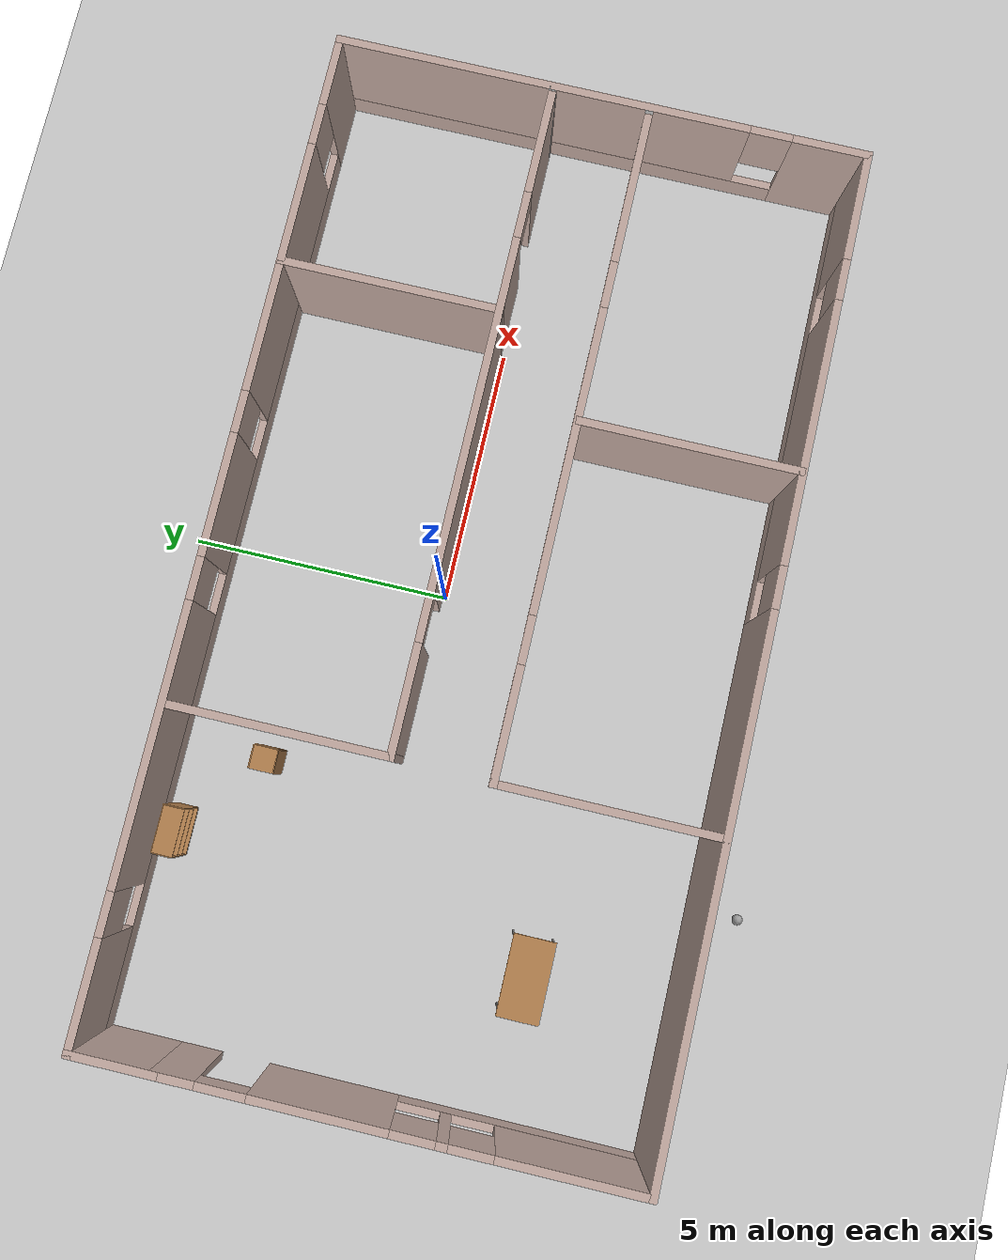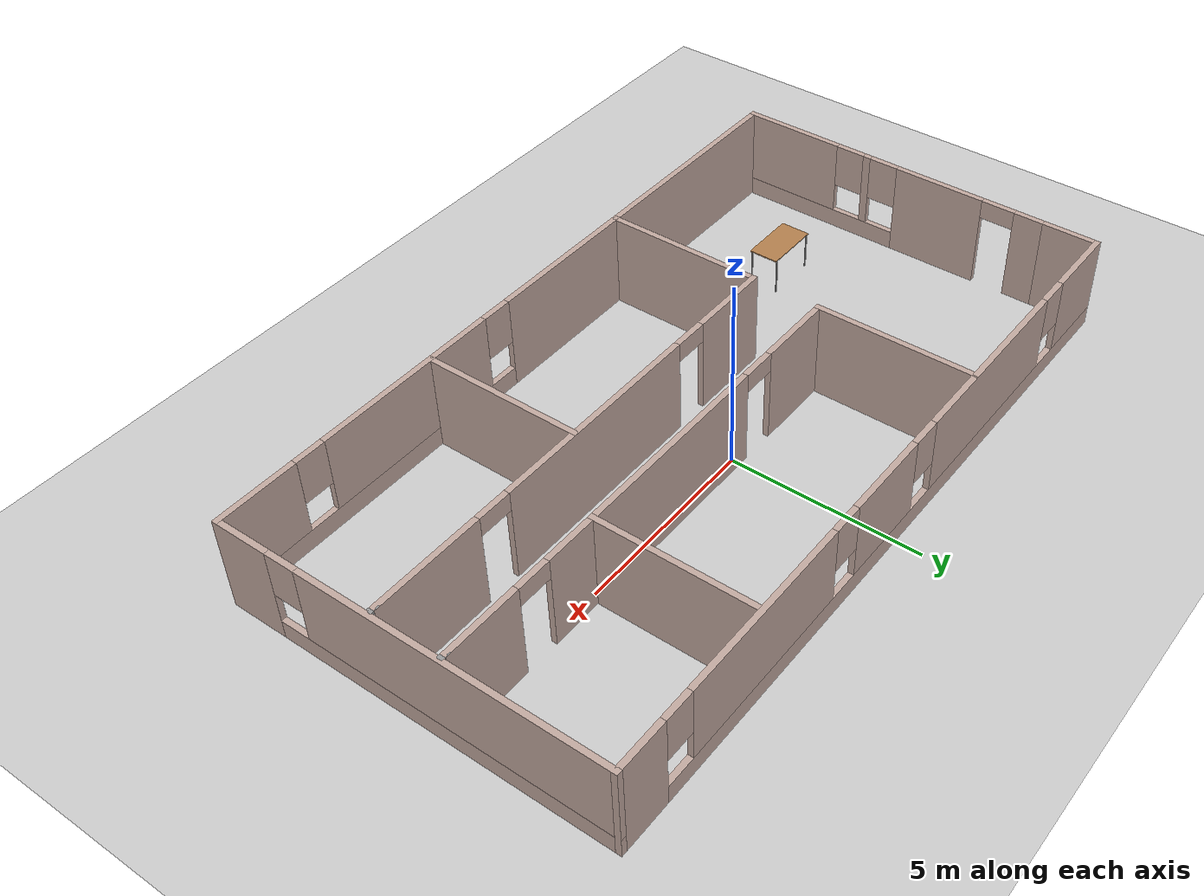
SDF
<sdf version="1.7">
 <world name="default">
  <plugin name="hello" filename="libhello.so"/>
  <light name="sun" type="directional">
   <pose>0 0 10 0 -0 0</pose>
   <diffuse>0.8 0.8 0.8 1</diffuse>
   <specular>0.2 0.2 0.2 1</specular>
   <attenuation>
    <range>1000</range>
    <constant>0.9</constant>
    <linear>0.01</linear>
    <quadratic>0.001</quadratic>
   </attenuation>
   <direction>-0.5 0.1 -0.9</direction>
   <spot><inner_angle>0</inner_angle><outer_angle>0</outer_angle><falloff>0</falloff></spot>
  </light>
  <model name="ground_plane">
   <static>1</static>
   <link name="link">
    <collision name="collision">
     <geometry><plane><normal>0 0 1</normal><size>100 100</size></plane></geometry>
     <surface><friction><ode><mu>100</mu><mu2>50</mu2></ode></friction></surface>
    </collision>
    <visual name="visual">
     <cast_shadows>0</cast_shadows>
     <geometry><plane><normal>0 0 1</normal><size>100 100</size></plane></geometry>
     <material>
      <script><uri>file://media/materials/scripts/gazebo.material</uri><name>Gazebo/Grey</name></script>
     </material>
    </visual>
   </link>
  </model>
  <gravity>0 0 -9.8</gravity>
  <magnetic_field>6e-06 2.3e-05 -4.2e-05</magnetic_field>
  <atmosphere type="adiabatic"/>
  <physics name="default_physics" default="0" type="ode">
   <max_step_size>0.001</max_step_size>
   <real_time_factor>1</real_time_factor>
   <real_time_update_rate>1000</real_time_update_rate>
  </physics>
  <scene><ambient>0.4 0.4 0.4 1</ambient><background>0.7 0.7 0.7 1</background><shadows>1</shadows></scene>
  <spherical_coordinates>
   <surface_model>EARTH_WGS84</surface_model>
   <latitude_deg>0</latitude_deg>
   <longitude_deg>0</longitude_deg>
   <elevation>0</elevation>
   <heading_deg>0</heading_deg>
  </spherical_coordinates>
  <model name="House_1level">
   <pose>0.13088 -0.79076 0 0 -0 0</pose>
   <link name="Wall_0">
    <pose>-9.425 -0.75 0 0 0 -1.5708</pose>
    <visual name="Wall_0_Visual_0">
     <pose>-3.98433 0 1.25 0 -0 0</pose>
     <geometry><box><size>0.781343 0.15 2.5</size></box></geometry>
     <material>
      <script><uri>file://media/materials/scripts/gazebo.material</uri><name>Gazebo/Grey</name></script>
      <ambient>0.760784 0.662745 0.627451 1</ambient>
     </material>
     <meta><layer>0</layer></meta>
    </visual>
    <collision name="Wall_0_Collision_0">
     <geometry><box><size>0.781343 0.15 2.5</size></box></geometry>
     <pose>-3.98433 0 1.25 0 -0 0</pose>
    </collision>
    <visual name="Wall_0_Visual_1">
     <pose>-1.4583 0 1.25 0 -0 0</pose>
     <geometry><box><size>2.47071 0.15 2.5</size></box></geometry>
     <material>
      <script><uri>file://media/materials/scripts/gazebo.material</uri><name>Gazebo/Grey</name></script>
      <ambient>0.760784 0.662745 0.627451 1</ambient>
     </material>
     <meta><layer>0</layer></meta>
    </visual>
    <collision name="Wall_0_Collision_1">
     <geometry><box><size>2.47071 0.15 2.5</size></box></geometry>
     <pose>-1.4583 0 1.25 0 -0 0</pose>
    </collision>
    <visual name="Wall_0_Visual_2">
     <pose>2.07602 0 0.25 0 -0 0</pose>
     <geometry><box><size>4.59795 0.15 0.5</size></box></geometry>
     <material>
      <script><uri>file://media/materials/scripts/gazebo.material</uri><name>Gazebo/Grey</name></script>
      <ambient>0.760784 0.662745 0.627451 1</ambient>
     </material>
     <meta><layer>0</layer></meta>
    </visual>
    <collision name="Wall_0_Collision_2">
     <geometry><box><size>4.59795 0.15 0.5</size></box></geometry>
     <pose>2.07602 0 0.25 0 -0 0</pose>
    </collision>
    <visual name="Wall_0_Visual_3">
     <pose>0.681787 0 1.5 0 -0 0</pose>
     <geometry><box><size>0.209478 0.15 2</size></box></geometry>
     <material>
      <script><uri>file://media/materials/scripts/gazebo.material</uri><name>Gazebo/Grey</name></script>
      <ambient>0.760784 0.662745 0.627451 1</ambient>
     </material>
     <meta><layer>0</layer></meta>
    </visual>
    <collision name="Wall_0_Collision_3">
     <geometry><box><size>0.209478 0.15 2</size></box></geometry>
     <pose>0.681787 0 1.5 0 -0 0</pose>
    </collision>
    <visual name="Wall_0_Visual_4">
     <pose>2.98076 0 1.5 0 -0 0</pose>
     <geometry><box><size>2.78847 0.15 2</size></box></geometry>
     <material>
      <script><uri>file://media/materials/scripts/gazebo.material</uri><name>Gazebo/Grey</name></script>
      <ambient>0.760784 0.662745 0.627451 1</ambient>
     </material>
     <meta><layer>0</layer></meta>
    </visual>
    <collision name="Wall_0_Collision_4">
     <geometry><box><size>2.78847 0.15 2</size></box></geometry>
     <pose>2.98076 0 1.5 0 -0 0</pose>
    </collision>
    <visual name="Wall_0_Visual_5">
     <pose>0.177048 0 1.9 0 -0 0</pose>
     <geometry><box><size>0.8 0.15 1.2</size></box></geometry>
     <material>
      <script><uri>file://media/materials/scripts/gazebo.material</uri><name>Gazebo/Grey</name></script>
      <ambient>0.760784 0.662745 0.627451 1</ambient>
     </material>
     <meta><layer>0</layer></meta>
    </visual>
    <collision name="Wall_0_Collision_5">
     <geometry><box><size>0.8 0.15 1.2</size></box></geometry>
     <pose>0.177048 0 1.9 0 -0 0</pose>
    </collision>
    <visual name="Wall_0_Visual_6">
     <pose>1.18653 0 1.9 0 -0 0</pose>
     <geometry><box><size>0.8 0.15 1.2</size></box></geometry>
     <material>
      <script><uri>file://media/materials/scripts/gazebo.material</uri><name>Gazebo/Grey</name></script>
      <ambient>0.760784 0.662745 0.627451 1</ambient>
     </material>
     <meta><layer>0</layer></meta>
    </visual>
    <collision name="Wall_0_Collision_6">
     <geometry><box><size>0.8 0.15 1.2</size></box></geometry>
     <pose>1.18653 0 1.9 0 -0 0</pose>
    </collision>
    <visual name="Wall_0_Visual_7">
     <pose>-3.14366 0 2.25 0 -0 0</pose>
     <geometry><box><size>0.9 0.15 0.5</size></box></geometry>
     <material>
      <script><uri>file://media/materials/scripts/gazebo.material</uri><name>Gazebo/Grey</name></script>
      <ambient>0.760784 0.662745 0.627451 1</ambient>
     </material>
     <meta><layer>0</layer></meta>
    </visual>
    <collision name="Wall_0_Collision_7">
     <geometry><box><size>0.9 0.15 0.5</size></box></geometry>
     <pose>-3.14366 0 2.25 0 -0 0</pose>
    </collision>
   </link>
   <link name="Wall_1">
    <pose>0 -5.05 0 0 -0 0</pose>
    <visual name="Wall_1_Visual_0">
     <pose>-4.39559 0 1.25 0 -0 0</pose>
     <geometry><box><size>10.2088 0.15 2.5</size></box></geometry>
     <material>
      <script><uri>file://media/materials/scripts/gazebo.material</uri><name>Gazebo/Grey</name></script>
      <ambient>0.760784 0.662745 0.627451 1</ambient>
     </material>
     <meta><layer>0</layer></meta>
    </visual>
    <collision name="Wall_1_Collision_0">
     <geometry><box><size>10.2088 0.15 2.5</size></box></geometry>
     <pose>-4.39559 0 1.25 0 -0 0</pose>
    </collision>
    <visual name="Wall_1_Visual_1">
     <pose>5.10441 0 0.25 0 -0 0</pose>
     <geometry><box><size>8.79118 0.15 0.5</size></box></geometry>
     <material>
      <script><uri>file://media/materials/scripts/gazebo.material</uri><name>Gazebo/Grey</name></script>
      <ambient>0.760784 0.662745 0.627451 1</ambient>
     </material>
     <meta><layer>0</layer></meta>
    </visual>
    <collision name="Wall_1_Collision_1">
     <geometry><box><size>8.79118 0.15 0.5</size></box></geometry>
     <pose>5.10441 0 0.25 0 -0 0</pose>
    </collision>
    <visual name="Wall_1_Visual_2">
     <pose>4.03018 0 1.5 0 -0 0</pose>
     <geometry><box><size>5.04273 0.15 2</size></box></geometry>
     <material>
      <script><uri>file://media/materials/scripts/gazebo.material</uri><name>Gazebo/Grey</name></script>
      <ambient>0.760784 0.662745 0.627451 1</ambient>
     </material>
     <meta><layer>0</layer></meta>
    </visual>
    <collision name="Wall_1_Collision_2">
     <geometry><box><size>5.04273 0.15 2</size></box></geometry>
     <pose>4.03018 0 1.5 0 -0 0</pose>
    </collision>
    <visual name="Wall_1_Visual_3">
     <pose>8.42577 0 1.5 0 -0 0</pose>
     <geometry><box><size>2.14845 0.15 2</size></box></geometry>
     <material>
      <script><uri>file://media/materials/scripts/gazebo.material</uri><name>Gazebo/Grey</name></script>
      <ambient>0.760784 0.662745 0.627451 1</ambient>
     </material>
     <meta><layer>0</layer></meta>
    </visual>
    <collision name="Wall_1_Collision_3">
     <geometry><box><size>2.14845 0.15 2</size></box></geometry>
     <pose>8.42577 0 1.5 0 -0 0</pose>
    </collision>
    <visual name="Wall_1_Visual_4">
     <pose>1.10882 0 1.9 0 -0 0</pose>
     <geometry><box><size>0.8 0.15 1.2</size></box></geometry>
     <material>
      <script><uri>file://media/materials/scripts/gazebo.material</uri><name>Gazebo/Grey</name></script>
      <ambient>0.760784 0.662745 0.627451 1</ambient>
     </material>
     <meta><layer>0</layer></meta>
    </visual>
    <collision name="Wall_1_Collision_4">
     <geometry><box><size>0.8 0.15 1.2</size></box></geometry>
     <pose>1.10882 0 1.9 0 -0 0</pose>
    </collision>
    <visual name="Wall_1_Visual_5">
     <pose>6.95155 0 1.9 0 -0 0</pose>
     <geometry><box><size>0.8 0.15 1.2</size></box></geometry>
     <material>
      <script><uri>file://media/materials/scripts/gazebo.material</uri><name>Gazebo/Grey</name></script>
      <ambient>0.760784 0.662745 0.627451 1</ambient>
     </material>
     <meta><layer>0</layer></meta>
    </visual>
    <collision name="Wall_1_Collision_5">
     <geometry><box><size>0.8 0.15 1.2</size></box></geometry>
     <pose>6.95155 0 1.9 0 -0 0</pose>
    </collision>
   </link>
   <link name="Wall_10">
    <collision name="Wall_10_Collision">
     <geometry><box><size>4.25 0.15 2.5</size></box></geometry>
     <pose>0 0 1.25 0 -0 0</pose>
    </collision>
    <visual name="Wall_10_Visual">
     <pose>0 0 1.25 0 -0 0</pose>
     <geometry><box><size>4.25 0.15 2.5</size></box></geometry>
     <material>
      <script><uri>file://media/materials/scripts/gazebo.material</uri><name>Gazebo/Grey</name></script>
      <ambient>0.760784 0.662745 0.627451 1</ambient>
     </material>
     <meta><layer>0</layer></meta>
    </visual>
    <pose>-3.39206 -2.96315 0 0 0 -1.5708</pose>
   </link>
   <link name="Wall_12">
    <pose>2.90794 -0.913146 0 0 -0 0</pose>
    <visual name="Wall_12_Visual_0">
     <pose>-5.27566 0 1.25 0 -0 0</pose>
     <geometry><box><size>2.19869 0.15 2.5</size></box></geometry>
     <material>
      <script><uri>file://media/materials/scripts/gazebo.material</uri><name>Gazebo/Grey</name></script>
      <ambient>0.760784 0.662745 0.627451 1</ambient>
     </material>
     <meta><layer>0</layer></meta>
    </visual>
    <collision name="Wall_12_Collision_0">
     <geometry><box><size>2.19869 0.15 2.5</size></box></geometry>
     <pose>-5.27566 0 1.25 0 -0 0</pose>
    </collision>
    <visual name="Wall_12_Visual_1">
     <pose>-0.37668 0 1.25 0 -0 0</pose>
     <geometry><box><size>5.79926 0.15 2.5</size></box></geometry>
     <material>
      <script><uri>file://media/materials/scripts/gazebo.material</uri><name>Gazebo/Grey</name></script>
      <ambient>0.760784 0.662745 0.627451 1</ambient>
     </material>
     <meta><layer>0</layer></meta>
    </visual>
    <collision name="Wall_12_Collision_1">
     <geometry><box><size>5.79926 0.15 2.5</size></box></geometry>
     <pose>-0.37668 0 1.25 0 -0 0</pose>
    </collision>
    <visual name="Wall_12_Visual_2">
     <pose>4.89898 0 1.25 0 -0 0</pose>
     <geometry><box><size>2.95205 0.15 2.5</size></box></geometry>
     <material>
      <script><uri>file://media/materials/scripts/gazebo.material</uri><name>Gazebo/Grey</name></script>
      <ambient>0.760784 0.662745 0.627451 1</ambient>
     </material>
     <meta><layer>0</layer></meta>
    </visual>
    <collision name="Wall_12_Collision_2">
     <geometry><box><size>2.95205 0.15 2.5</size></box></geometry>
     <pose>4.89898 0 1.25 0 -0 0</pose>
    </collision>
    <visual name="Wall_12_Visual_3">
     <pose>-3.72631 0 2.25 0 -0 0</pose>
     <geometry><box><size>0.9 0.15 0.5</size></box></geometry>
     <material>
      <script><uri>file://media/materials/scripts/gazebo.material</uri><name>Gazebo/Grey</name></script>
      <ambient>0.760784 0.662745 0.627451 1</ambient>
     </material>
     <meta><layer>0</layer></meta>
    </visual>
    <collision name="Wall_12_Collision_3">
     <geometry><box><size>0.9 0.15 0.5</size></box></geometry>
     <pose>-3.72631 0 2.25 0 -0 0</pose>
    </collision>
    <visual name="Wall_12_Visual_4">
     <pose>2.97295 0 2.25 0 -0 0</pose>
     <geometry><box><size>0.9 0.15 0.5</size></box></geometry>
     <material>
      <script><uri>file://media/materials/scripts/gazebo.material</uri><name>Gazebo/Grey</name></script>
      <ambient>0.760784 0.662745 0.627451 1</ambient>
     </material>
     <meta><layer>0</layer></meta>
    </visual>
    <collision name="Wall_12_Collision_4">
     <geometry><box><size>0.9 0.15 0.5</size></box></geometry>
     <pose>2.97295 0 2.25 0 -0 0</pose>
    </collision>
   </link>
   <link name="Wall_13">
    <collision name="Wall_13_Collision">
     <geometry><box><size>0.25 0.15 2.5</size></box></geometry>
     <pose>0 0 1.25 0 -0 0</pose>
    </collision>
    <visual name="Wall_13_Visual">
     <pose>0 0 1.25 0 -0 0</pose>
     <geometry><box><size>0.25 0.15 2.5</size></box></geometry>
     <material>
      <script><uri>file://media/materials/scripts/gazebo.material</uri><name>Gazebo/Grey</name></script>
      <ambient>1 1 1 1</ambient>
     </material>
     <meta><layer>0</layer></meta>
    </visual>
    <pose>9.25794 -0.913146 0 0 -0 0</pose>
   </link>
   <link name="Wall_16">
    <collision name="Wall_16_Collision">
     <geometry><box><size>4.25 0.15 2.5</size></box></geometry>
     <pose>0 0 1.25 0 -0 0</pose>
    </collision>
    <visual name="Wall_16_Visual">
     <pose>0 0 1.25 0 -0 0</pose>
     <geometry><box><size>4.25 0.15 2.5</size></box></geometry>
     <material>
      <script><uri>file://media/materials/scripts/gazebo.material</uri><name>Gazebo/Grey</name></script>
      <ambient>0.760784 0.662745 0.627451 1</ambient>
     </material>
     <meta><layer>0</layer></meta>
    </visual>
    <pose>4.9606 2.98206 0 0 0 -1.5708</pose>
   </link>
   <link name="Wall_18">
    <collision name="Wall_18_Collision">
     <geometry><box><size>4.25 0.15 2.5</size></box></geometry>
     <pose>0 0 1.25 0 -0 0</pose>
    </collision>
    <visual name="Wall_18_Visual">
     <pose>0 0 1.25 0 -0 0</pose>
     <geometry><box><size>4.25 0.15 2.5</size></box></geometry>
     <material>
      <script><uri>file://media/materials/scripts/gazebo.material</uri><name>Gazebo/Grey</name></script>
      <ambient>0.760784 0.662745 0.627451 1</ambient>
     </material>
     <meta><layer>0</layer></meta>
    </visual>
    <pose>3.25673 -2.96315 0 0 0 -1.5708</pose>
   </link>
   <link name="Wall_2">
    <pose>9.425 0 0 0 -0 1.5708</pose>
    <visual name="Wall_2_Visual_0">
     <pose>-4.37316 0 1.25 0 -0 0</pose>
     <geometry><box><size>1.50368 0.15 2.5</size></box></geometry>
     <material>
      <script><uri>file://media/materials/scripts/gazebo.material</uri><name>Gazebo/Grey</name></script>
      <ambient>0.760784 0.662745 0.627451 1</ambient>
     </material>
     <meta><layer>0</layer></meta>
    </visual>
    <collision name="Wall_2_Collision_0">
     <geometry><box><size>1.50368 0.15 2.5</size></box></geometry>
     <pose>-4.37316 0 1.25 0 -0 0</pose>
    </collision>
    <visual name="Wall_2_Visual_1">
     <pose>0.751842 0 0.25 0 -0 0</pose>
     <geometry><box><size>8.74631 0.15 0.5</size></box></geometry>
     <material>
      <script><uri>file://media/materials/scripts/gazebo.material</uri><name>Gazebo/Grey</name></script>
      <ambient>0.760784 0.662745 0.627451 1</ambient>
     </material>
     <meta><layer>0</layer></meta>
    </visual>
    <collision name="Wall_2_Collision_1">
     <geometry><box><size>8.74631 0.15 0.5</size></box></geometry>
     <pose>0.751842 0 0.25 0 -0 0</pose>
    </collision>
    <visual name="Wall_2_Visual_2">
     <pose>1.15184 0 1.5 0 -0 0</pose>
     <geometry><box><size>7.94632 0.15 2</size></box></geometry>
     <material>
      <script><uri>file://media/materials/scripts/gazebo.material</uri><name>Gazebo/Grey</name></script>
      <ambient>0.760784 0.662745 0.627451 1</ambient>
     </material>
     <meta><layer>0</layer></meta>
    </visual>
    <collision name="Wall_2_Collision_2">
     <geometry><box><size>7.94632 0.15 2</size></box></geometry>
     <pose>1.15184 0 1.5 0 -0 0</pose>
    </collision>
    <visual name="Wall_2_Visual_3">
     <pose>-3.22132 0 1.9 0 -0 0</pose>
     <geometry><box><size>0.8 0.15 1.2</size></box></geometry>
     <material>
      <script><uri>file://media/materials/scripts/gazebo.material</uri><name>Gazebo/Grey</name></script>
      <ambient>0.760784 0.662745 0.627451 1</ambient>
     </material>
     <meta><layer>0</layer></meta>
    </visual>
    <collision name="Wall_2_Collision_3">
     <geometry><box><size>0.8 0.15 1.2</size></box></geometry>
     <pose>-3.22132 0 1.9 0 -0 0</pose>
    </collision>
   </link>
   <link name="Wall_3">
    <pose>0 5.05 0 0 -0 3.14159</pose>
    <visual name="Wall_3_Visual_0">
     <pose>-8.79286 0 1.25 0 -0 0</pose>
     <geometry><box><size>1.41429 0.15 2.5</size></box></geometry>
     <material>
      <script><uri>file://media/materials/scripts/gazebo.material</uri><name>Gazebo/Grey</name></script>
      <ambient>0.760784 0.662745 0.627451 1</ambient>
     </material>
     <meta><layer>0</layer></meta>
    </visual>
    <collision name="Wall_3_Collision_0">
     <geometry><box><size>1.41429 0.15 2.5</size></box></geometry>
     <pose>-8.79286 0 1.25 0 -0 0</pose>
    </collision>
    <visual name="Wall_3_Visual_1">
     <pose>0.707143 0 0.25 0 -0 0</pose>
     <geometry><box><size>17.5857 0.15 0.5</size></box></geometry>
     <material>
      <script><uri>file://media/materials/scripts/gazebo.material</uri><name>Gazebo/Grey</name></script>
      <ambient>0.760784 0.662745 0.627451 1</ambient>
     </material>
     <meta><layer>0</layer></meta>
    </visual>
    <collision name="Wall_3_Collision_1">
     <geometry><box><size>17.5857 0.15 0.5</size></box></geometry>
     <pose>0.707143 0 0.25 0 -0 0</pose>
    </collision>
    <visual name="Wall_3_Visual_2">
     <pose>-4.85612 0 1.5 0 -0 0</pose>
     <geometry><box><size>4.85919 0.15 2</size></box></geometry>
     <material>
      <script><uri>file://media/materials/scripts/gazebo.material</uri><name>Gazebo/Grey</name></script>
      <ambient>0.760784 0.662745 0.627451 1</ambient>
     </material>
     <meta><layer>0</layer></meta>
    </visual>
    <collision name="Wall_3_Collision_2">
     <geometry><box><size>4.85919 0.15 2</size></box></geometry>
     <pose>-4.85612 0 1.5 0 -0 0</pose>
    </collision>
    <visual name="Wall_3_Visual_3">
     <pose>-0.466421 0 1.5 0 -0 0</pose>
     <geometry><box><size>2.3202 0.15 2</size></box></geometry>
     <material>
      <script><uri>file://media/materials/scripts/gazebo.material</uri><name>Gazebo/Grey</name></script>
      <ambient>0.760784 0.662745 0.627451 1</ambient>
     </material>
     <meta><layer>0</layer></meta>
    </visual>
    <collision name="Wall_3_Collision_3">
     <geometry><box><size>2.3202 0.15 2</size></box></geometry>
     <pose>-0.466421 0 1.5 0 -0 0</pose>
    </collision>
    <visual name="Wall_3_Visual_4">
     <pose>4.07623 0 1.5 0 -0 0</pose>
     <geometry><box><size>5.16509 0.15 2</size></box></geometry>
     <material>
      <script><uri>file://media/materials/scripts/gazebo.material</uri><name>Gazebo/Grey</name></script>
      <ambient>0.760784 0.662745 0.627451 1</ambient>
     </material>
     <meta><layer>0</layer></meta>
    </visual>
    <collision name="Wall_3_Collision_4">
     <geometry><box><size>5.16509 0.15 2</size></box></geometry>
     <pose>4.07623 0 1.5 0 -0 0</pose>
    </collision>
    <visual name="Wall_3_Visual_5">
     <pose>8.47939 0 1.5 0 -0 0</pose>
     <geometry><box><size>2.04122 0.15 2</size></box></geometry>
     <material>
      <script><uri>file://media/materials/scripts/gazebo.material</uri><name>Gazebo/Grey</name></script>
      <ambient>0.760784 0.662745 0.627451 1</ambient>
     </material>
     <meta><layer>0</layer></meta>
    </visual>
    <collision name="Wall_3_Collision_5">
     <geometry><box><size>2.04122 0.15 2</size></box></geometry>
     <pose>8.47939 0 1.5 0 -0 0</pose>
    </collision>
    <visual name="Wall_3_Visual_6">
     <pose>-7.68572 0 1.9 0 -0 0</pose>
     <geometry><box><size>0.8 0.15 1.2</size></box></geometry>
     <material>
      <script><uri>file://media/materials/scripts/gazebo.material</uri><name>Gazebo/Grey</name></script>
      <ambient>0.760784 0.662745 0.627451 1</ambient>
     </material>
     <meta><layer>0</layer></meta>
    </visual>
    <collision name="Wall_3_Collision_6">
     <geometry><box><size>0.8 0.15 1.2</size></box></geometry>
     <pose>-7.68572 0 1.9 0 -0 0</pose>
    </collision>
    <visual name="Wall_3_Visual_7">
     <pose>-2.02652 0 1.9 0 -0 0</pose>
     <geometry><box><size>0.8 0.15 1.2</size></box></geometry>
     <material>
      <script><uri>file://media/materials/scripts/gazebo.material</uri><name>Gazebo/Grey</name></script>
      <ambient>0.760784 0.662745 0.627451 1</ambient>
     </material>
     <meta><layer>0</layer></meta>
    </visual>
    <collision name="Wall_3_Collision_7">
     <geometry><box><size>0.8 0.15 1.2</size></box></geometry>
     <pose>-2.02652 0 1.9 0 -0 0</pose>
    </collision>
    <visual name="Wall_3_Visual_8">
     <pose>1.09368 0 1.9 0 -0 0</pose>
     <geometry><box><size>0.8 0.15 1.2</size></box></geometry>
     <material>
      <script><uri>file://media/materials/scripts/gazebo.material</uri><name>Gazebo/Grey</name></script>
      <ambient>0.760784 0.662745 0.627451 1</ambient>
     </material>
     <meta><layer>0</layer></meta>
    </visual>
    <collision name="Wall_3_Collision_8">
     <geometry><box><size>0.8 0.15 1.2</size></box></geometry>
     <pose>1.09368 0 1.9 0 -0 0</pose>
    </collision>
    <visual name="Wall_3_Visual_9">
     <pose>7.05877 0 1.9 0 -0 0</pose>
     <geometry><box><size>0.8 0.15 1.2</size></box></geometry>
     <material>
      <script><uri>file://media/materials/scripts/gazebo.material</uri><name>Gazebo/Grey</name></script>
      <ambient>0.760784 0.662745 0.627451 1</ambient>
     </material>
     <meta><layer>0</layer></meta>
    </visual>
    <collision name="Wall_3_Collision_9">
     <geometry><box><size>0.8 0.15 1.2</size></box></geometry>
     <pose>7.05877 0 1.9 0 -0 0</pose>
    </collision>
   </link>
   <link name="Wall_4">
    <collision name="Wall_4_Collision">
     <geometry><box><size>1.65 0.15 2.5</size></box></geometry>
     <pose>0 0 1.25 0 -0 0</pose>
    </collision>
    <visual name="Wall_4_Visual">
     <pose>0 0 1.25 0 -0 0</pose>
     <geometry><box><size>1.65 0.15 2.5</size></box></geometry>
     <material>
      <script><uri>file://media/materials/scripts/gazebo.material</uri><name>Gazebo/Grey</name></script>
      <ambient>0.760784 0.662745 0.627451 1</ambient>
     </material>
     <meta><layer>0</layer></meta>
    </visual>
    <pose>-9.425 4.3 0 0 0 -1.5708</pose>
   </link>
   <link name="Wall_6">
    <collision name="Wall_6_Collision">
     <geometry><box><size>4.25 0.15 2.5</size></box></geometry>
     <pose>0 0 1.25 0 -0 0</pose>
    </collision>
    <visual name="Wall_6_Visual">
     <pose>0 0 1.25 0 -0 0</pose>
     <geometry><box><size>4.25 0.15 2.5</size></box></geometry>
     <material>
      <script><uri>file://media/materials/scripts/gazebo.material</uri><name>Gazebo/Grey</name></script>
      <ambient>0.760784 0.662745 0.627451 1</ambient>
     </material>
     <meta><layer>0</layer></meta>
    </visual>
    <pose>-3.35688 2.98206 0 0 0 -1.5708</pose>
   </link>
   <link name="Wall_7">
    <pose>2.94312 0.932064 0 0 -0 0</pose>
    <visual name="Wall_7_Visual_0">
     <pose>-5.30854 0 1.25 0 -0 0</pose>
     <geometry><box><size>2.13292 0.15 2.5</size></box></geometry>
     <material>
      <script><uri>file://media/materials/scripts/gazebo.material</uri><name>Gazebo/Grey</name></script>
      <ambient>0.760784 0.662745 0.627451 1</ambient>
     </material>
     <meta><layer>0</layer></meta>
    </visual>
    <collision name="Wall_7_Collision_0">
     <geometry><box><size>2.13292 0.15 2.5</size></box></geometry>
     <pose>-5.30854 0 1.25 0 -0 0</pose>
    </collision>
    <visual name="Wall_7_Visual_1">
     <pose>0.046994 0 1.25 0 -0 0</pose>
     <geometry><box><size>6.77815 0.15 2.5</size></box></geometry>
     <material>
      <script><uri>file://media/materials/scripts/gazebo.material</uri><name>Gazebo/Grey</name></script>
      <ambient>0.760784 0.662745 0.627451 1</ambient>
     </material>
     <meta><layer>0</layer></meta>
    </visual>
    <collision name="Wall_7_Collision_1">
     <geometry><box><size>6.77815 0.15 2.5</size></box></geometry>
     <pose>0.046994 0 1.25 0 -0 0</pose>
    </collision>
    <visual name="Wall_7_Visual_2">
     <pose>5.35553 0 1.25 0 -0 0</pose>
     <geometry><box><size>2.03893 0.15 2.5</size></box></geometry>
     <material>
      <script><uri>file://media/materials/scripts/gazebo.material</uri><name>Gazebo/Grey</name></script>
      <ambient>0.760784 0.662745 0.627451 1</ambient>
     </material>
     <meta><layer>0</layer></meta>
    </visual>
    <collision name="Wall_7_Collision_2">
     <geometry><box><size>2.03893 0.15 2.5</size></box></geometry>
     <pose>5.35553 0 1.25 0 -0 0</pose>
    </collision>
    <visual name="Wall_7_Visual_3">
     <pose>-3.79208 0 2.25 0 -0 0</pose>
     <geometry><box><size>0.9 0.15 0.5</size></box></geometry>
     <material>
      <script><uri>file://media/materials/scripts/gazebo.material</uri><name>Gazebo/Grey</name></script>
      <ambient>0.760784 0.662745 0.627451 1</ambient>
     </material>
     <meta><layer>0</layer></meta>
    </visual>
    <collision name="Wall_7_Collision_3">
     <geometry><box><size>0.9 0.15 0.5</size></box></geometry>
     <pose>-3.79208 0 2.25 0 -0 0</pose>
    </collision>
    <visual name="Wall_7_Visual_4">
     <pose>3.88607 0 2.25 0 -0 0</pose>
     <geometry><box><size>0.9 0.15 0.5</size></box></geometry>
     <material>
      <script><uri>file://media/materials/scripts/gazebo.material</uri><name>Gazebo/Grey</name></script>
      <ambient>0.760784 0.662745 0.627451 1</ambient>
     </material>
     <meta><layer>0</layer></meta>
    </visual>
    <collision name="Wall_7_Collision_4">
     <geometry><box><size>0.9 0.15 0.5</size></box></geometry>
     <pose>3.88607 0 2.25 0 -0 0</pose>
    </collision>
   </link>
   <link name="Wall_8">
    <collision name="Wall_8_Collision">
     <geometry><box><size>0.25 0.15 2.5</size></box></geometry>
     <pose>0 0 1.25 0 -0 0</pose>
    </collision>
    <visual name="Wall_8_Visual">
     <pose>0 0 1.25 0 -0 0</pose>
     <geometry><box><size>0.25 0.15 2.5</size></box></geometry>
     <material>
      <script><uri>file://media/materials/scripts/gazebo.material</uri><name>Gazebo/Grey</name></script>
      <ambient>1 1 1 1</ambient>
     </material>
     <meta><layer>0</layer></meta>
    </visual>
    <pose>9.29312 0.932064 0 0 -0 0</pose>
   </link>
   <static>1</static>
  </model>
  <model name="bookshelf">
   <static>1</static>
   <link name="link">
    <inertial><mass>1</mass></inertial>
    <collision name="back">
     <pose>0 0.005 0.6 0 -0 0</pose>
     <geometry><box><size>0.9 0.01 1.2</size></box></geometry>
    </collision>
    <visual name="visual1">
     <pose>0 0.005 0.6 0 -0 0</pose>
     <geometry><box><size>0.9 0.01 1.2</size></box></geometry>
     <material>
      <script><uri>file://media/materials/scripts/gazebo.material</uri><name>Gazebo/Wood</name></script>
     </material>
    </visual>
    <collision name="left_side">
     <pose>0.45 -0.195 0.6 0 -0 0</pose>
     <geometry><box><size>0.02 0.4 1.2</size></box></geometry>
    </collision>
    <visual name="visual2">
     <pose>0.45 -0.195 0.6 0 -0 0</pose>
     <geometry><box><size>0.02 0.4 1.2</size></box></geometry>
     <material>
      <script><uri>file://media/materials/scripts/gazebo.material</uri><name>Gazebo/Wood</name></script>
     </material>
    </visual>
    <collision name="right_side">
     <pose>-0.45 -0.195 0.6 0 -0 0</pose>
     <geometry><box><size>0.02 0.4 1.2</size></box></geometry>
    </collision>
    <visual name="visual3">
     <pose>-0.45 -0.195 0.6 0 -0 0</pose>
     <geometry><box><size>0.02 0.4 1.2</size></box></geometry>
     <material>
      <script><uri>file://media/materials/scripts/gazebo.material</uri><name>Gazebo/Wood</name></script>
     </material>
    </visual>
    <collision name="bottom">
     <pose>0 -0.195 0.03 0 -0 0</pose>
     <geometry><box><size>0.88 0.4 0.06</size></box></geometry>
    </collision>
    <visual name="visual4">
     <pose>0 -0.195 0.03 0 -0 0</pose>
     <geometry><box><size>0.88 0.4 0.06</size></box></geometry>
     <material>
      <script><uri>file://media/materials/scripts/gazebo.material</uri><name>Gazebo/Wood</name></script>
     </material>
    </visual>
    <collision name="top">
     <pose>0 -0.195 1.19 0 -0 0</pose>
     <geometry><box><size>0.88 0.4 0.02</size></box></geometry>
    </collision>
    <visual name="visual5">
     <pose>0 -0.195 1.19 0 -0 0</pose>
     <geometry><box><size>0.88 0.4 0.02</size></box></geometry>
     <material>
      <script><uri>file://media/materials/scripts/gazebo.material</uri><name>Gazebo/Wood</name></script>
     </material>
    </visual>
    <collision name="low_shelf">
     <pose>0 -0.195 0.43 0 -0 0</pose>
     <geometry><box><size>0.88 0.4 0.02</size></box></geometry>
    </collision>
    <visual name="visual6">
     <pose>0 -0.195 0.43 0 -0 0</pose>
     <geometry><box><size>0.88 0.4 0.02</size></box></geometry>
     <material>
      <script><uri>file://media/materials/scripts/gazebo.material</uri><name>Gazebo/Wood</name></script>
     </material>
    </visual>
    <collision name="high_shelf">
     <pose>0 -0.195 0.8 0 -0 0</pose>
     <geometry><box><size>0.88 0.4 0.02</size></box></geometry>
    </collision>
    <visual name="visual7">
     <pose>0 -0.195 0.8 0 -0 0</pose>
     <geometry><box><size>0.88 0.4 0.02</size></box></geometry>
     <material>
      <script><uri>file://media/materials/scripts/gazebo.material</uri><name>Gazebo/Wood</name></script>
     </material>
    </visual>
   </link>
   <pose>-5.44204 4.05675 0 0 -0 0</pose>
  </model>
  <model name="cabinet">
   <static>1</static>
   <link name="cabinet_bottom_plate">
    <inertial>
     <pose>0 0 -1 0 -0 0</pose>
     <inertia><ixx>2.05</ixx><ixy>0</ixy><ixz>0</ixz><iyy>2.05</iyy><iyz>0</iyz><izz>2.05</izz></inertia>
     <mass>25</mass>
    </inertial>
    <collision name="cabinet_bottom_plate_geom">
     <pose>0 0 0.01 0 -0 0</pose>
     <geometry><box><size>0.45 0.45 0.02</size></box></geometry>
    </collision>
    <visual name="cabinet_bottom_plate_geom_visual">
     <pose>0 0 0.01 0 -0 0</pose>
     <geometry><box><size>0.45 0.45 0.02</size></box></geometry>
     <material>
      <script><uri>file://media/materials/scripts/gazebo.material</uri><name>Gazebo/Wood</name></script>
     </material>
    </visual>
    <collision name="cabinet_bottom_plate_geom_cabinet_back_plate">
     <pose>0.235 0 0.51 0 -0 0</pose>
     <geometry><box><size>0.02 0.45 1.02</size></box></geometry>
    </collision>
    <visual name="cabinet_bottom_plate_geom_cabinet_back_plate_visual">
     <pose>0.235 0 0.51 0 -0 0</pose>
     <geometry><box><size>0.02 0.45 1.02</size></box></geometry>
     <material>
      <script><uri>file://media/materials/scripts/gazebo.material</uri><name>Gazebo/Wood</name></script>
     </material>
    </visual>
    <collision name="cabinet_bottom_plate_geom_cabinet_left_plate">
     <pose>0 0.235 0.51 0 -0 0</pose>
     <geometry><box><size>0.45 0.02 1.02</size></box></geometry>
    </collision>
    <visual name="cabinet_bottom_plate_geom_cabinet_left_plate_visual">
     <pose>0 0.235 0.51 0 -0 0</pose>
     <geometry><box><size>0.45 0.02 1.02</size></box></geometry>
     <material>
      <script><uri>file://media/materials/scripts/gazebo.material</uri><name>Gazebo/Wood</name></script>
     </material>
    </visual>
    <collision name="cabinet_bottom_plate_geom_cabinet_middle_plate">
     <pose>0 0 0.51 0 -0 0</pose>
     <geometry><box><size>0.45 0.45 0.02</size></box></geometry>
    </collision>
    <visual name="cabinet_bottom_plate_geom_cabinet_middle_plate_visual">
     <pose>0 0 0.51 0 -0 0</pose>
     <geometry><box><size>0.45 0.45 0.02</size></box></geometry>
     <material>
      <script><uri>file://media/materials/scripts/gazebo.material</uri><name>Gazebo/Wood</name></script>
     </material>
    </visual>
    <collision name="cabinet_bottom_plate_geom_cabinet_right_plate">
     <pose>0 -0.235 0.51 0 -0 0</pose>
     <geometry><box><size>0.45 0.02 1.02</size></box></geometry>
    </collision>
    <visual name="cabinet_bottom_plate_geom_cabinet_right_plate_visual">
     <pose>0 -0.235 0.51 0 -0 0</pose>
     <geometry><box><size>0.45 0.02 1.02</size></box></geometry>
     <material>
      <script><uri>file://media/materials/scripts/gazebo.material</uri><name>Gazebo/Wood</name></script>
     </material>
    </visual>
    <collision name="cabinet_bottom_plate_geom_cabinet_top_plate">
     <pose>0 0 1.01 0 -0 0</pose>
     <geometry><box><size>0.45 0.45 0.02</size></box></geometry>
    </collision>
    <visual name="cabinet_bottom_plate_geom_cabinet_top_plate_visual">
     <pose>0 0 1.01 0 -0 0</pose>
     <geometry><box><size>0.45 0.45 0.02</size></box></geometry>
     <material>
      <script><uri>file://media/materials/scripts/gazebo.material</uri><name>Gazebo/Wood</name></script>
     </material>
    </visual>
   </link>
   <pose>-3.79309 2.52741 0 0 -0 0</pose>
  </model>
  <model name="table">
   <static>1</static>
   <link name="link">
    <collision name="surface">
     <pose>0 0 1 0 -0 0</pose>
     <geometry><box><size>1.5 0.8 0.03</size></box></geometry>
     <surface><friction><ode><mu>0.6</mu><mu2>0.6</mu2></ode></friction></surface>
    </collision>
    <visual name="visual1">
     <pose>0 0 1 0 -0 0</pose>
     <geometry><box><size>1.5 0.8 0.03</size></box></geometry>
     <material>
      <script><uri>file://media/materials/scripts/gazebo.material</uri><name>Gazebo/Wood</name></script>
     </material>
    </visual>
    <collision name="front_left_leg">
     <pose>0.68 0.38 0.5 0 -0 0</pose>
     <geometry><cylinder><radius>0.02</radius><length>1</length></cylinder></geometry>
    </collision>
    <visual name="front_left_leg">
     <pose>0.68 0.38 0.5 0 -0 0</pose>
     <geometry><cylinder><radius>0.02</radius><length>1</length></cylinder></geometry>
     <material>
      <script><uri>file://media/materials/scripts/gazebo.material</uri><name>Gazebo/Grey</name></script>
     </material>
    </visual>
    <collision name="front_right_leg">
     <pose>0.68 -0.38 0.5 0 -0 0</pose>
     <geometry><cylinder><radius>0.02</radius><length>1</length></cylinder></geometry>
    </collision>
    <visual name="front_right_leg">
     <pose>0.68 -0.38 0.5 0 -0 0</pose>
     <geometry><cylinder><radius>0.02</radius><length>1</length></cylinder></geometry>
     <material>
      <script><uri>file://media/materials/scripts/gazebo.material</uri><name>Gazebo/Grey</name></script>
     </material>
    </visual>
    <collision name="back_right_leg">
     <pose>-0.68 -0.38 0.5 0 -0 0</pose>
     <geometry><cylinder><radius>0.02</radius><length>1</length></cylinder></geometry>
    </collision>
    <visual name="back_right_leg">
     <pose>-0.68 -0.38 0.5 0 -0 0</pose>
     <geometry><cylinder><radius>0.02</radius><length>1</length></cylinder></geometry>
     <material>
      <script><uri>file://media/materials/scripts/gazebo.material</uri><name>Gazebo/Grey</name></script>
     </material>
    </visual>
    <collision name="back_left_leg">
     <pose>-0.68 0.38 0.5 0 -0 0</pose>
     <geometry><cylinder><radius>0.02</radius><length>1</length></cylinder></geometry>
    </collision>
    <visual name="back_left_leg">
     <pose>-0.68 0.38 0.5 0 -0 0</pose>
     <geometry><cylinder><radius>0.02</radius><length>1</length></cylinder></geometry>
     <material>
      <script><uri>file://media/materials/scripts/gazebo.material</uri><name>Gazebo/Grey</name></script>
     </material>
    </visual>
   </link>
   <pose>-6.52764 -3.08485 0 0 -0 0</pose>
  </model>
  <model name="my_ball">
   <link name="link_0">
    <inertial>
     <mass>1</mass>
     <inertia><ixx>0.1</ixx><ixy>0</ixy><ixz>0</ixz><iyy>0.1</iyy><iyz>0</iyz><izz>0.1</izz></inertia>
    </inertial>
    <visual name="visual">
     <geometry><sphere><radius>0.1</radius></sphere></geometry>
     <material>
      <lighting>1</lighting>
      <script><uri>file://media/materials/scripts/gazebo.material</uri><name>Gazebo/Grey</name></script>
      <shader type="pixel"><normal_map>__default__</normal_map></shader>
      <ambient>1 1 1 1</ambient>
      <diffuse>1 1 1 1</diffuse>
      <specular>1 1 1 1</specular>
      <emissive>1 1 1 1</emissive>
     </material>
    </visual>
    <collision name="collision">
     <geometry><sphere><radius>0.1</radius></sphere></geometry>
     <surface>
      <friction>
       <ode><mu>1</mu><mu2>1</mu2><fdir1>0 0 0</fdir1><slip1>0</slip1><slip2>0</slip2></ode>
       <torsional>
        <coefficient>1</coefficient>
        <patch_radius>0</patch_radius>
        <surface_radius>0</surface_radius>
        <use_patch_radius>1</use_patch_radius>
        <ode><slip>0</slip></ode>
       </torsional>
      </friction>
      <bounce><restitution_coefficient>0</restitution_coefficient><threshold>1e+06</threshold></bounce>
      <contact>
       <collide_without_contact>0</collide_without_contact>
       <collide_without_contact_bitmask>1</collide_without_contact_bitmask>
       <collide_bitmask>1</collide_bitmask>
       <ode>
        <soft_cfm>0</soft_cfm>
        <soft_erp>0.2</soft_erp>
        <kp>1e+13</kp>
        <kd>1</kd>
        <max_vel>0.01</max_vel>
        <min_depth>0</min_depth>
       </ode>
       <bullet>
        <split_impulse>1</split_impulse>
        <split_impulse_penetration_threshold>-0.01</split_impulse_penetration_threshold>
        <soft_cfm>0</soft_cfm>
        <soft_erp>0.2</soft_erp>
        <kp>1e+13</kp>
        <kd>1</kd>
       </bullet>
      </contact>
     </surface>
    </collision>
   </link>
   <static>0</static>
   <pose>-4.68005 -6.75491 0.1 0 -0 0</pose>
  </model>
 </world>
</sdf>
